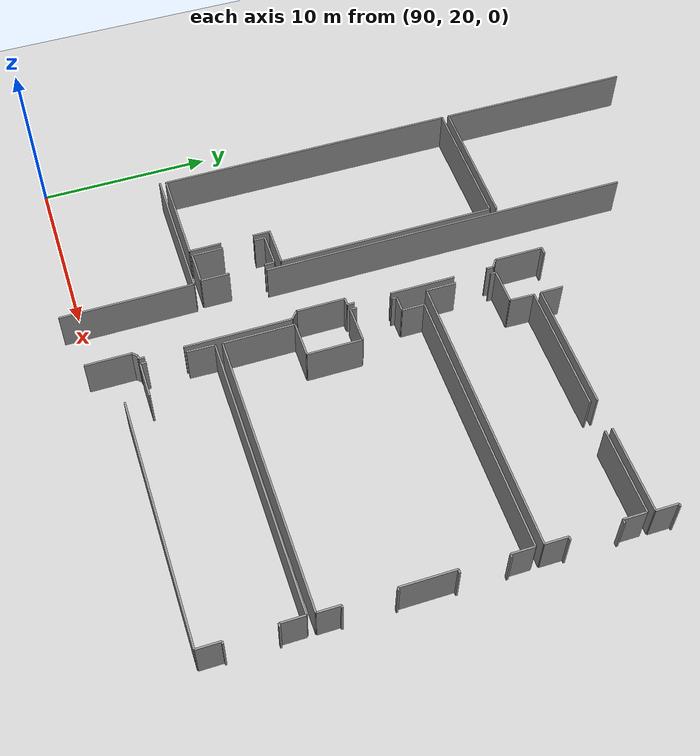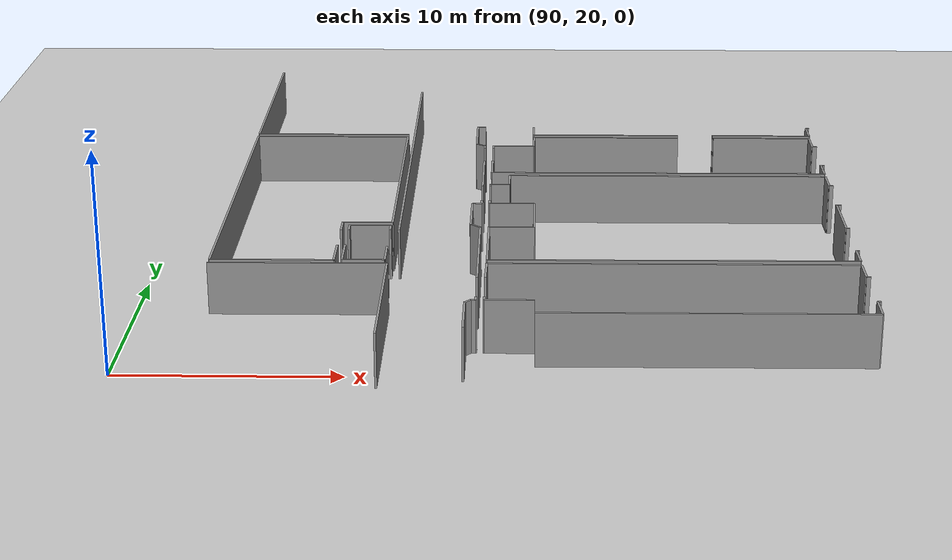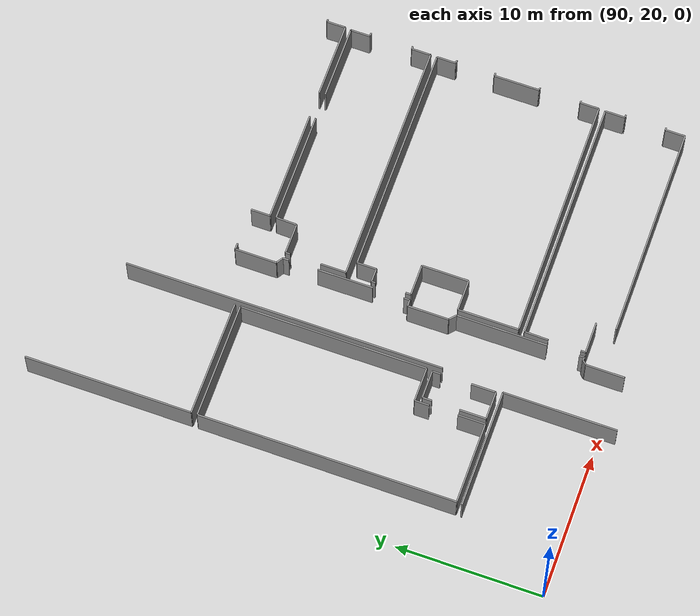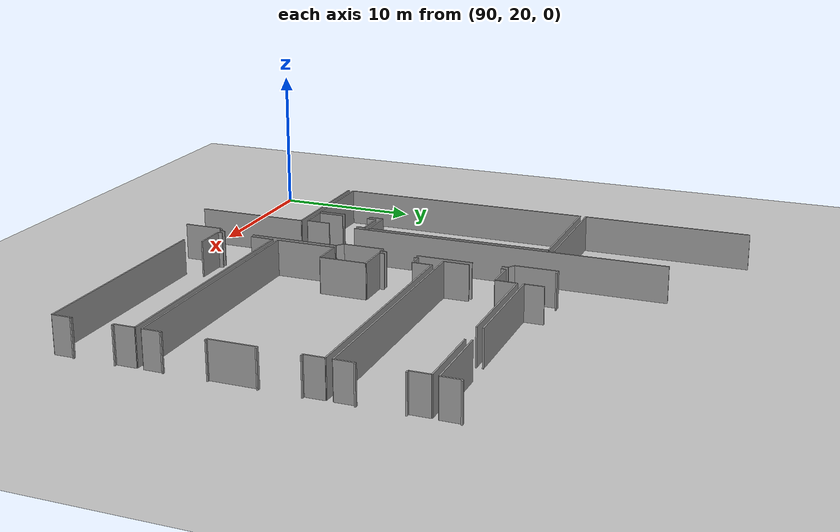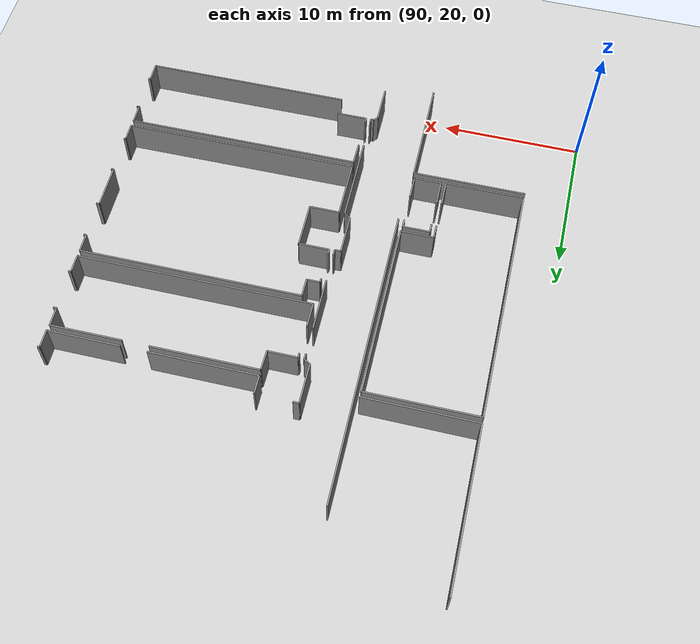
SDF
<sdf version="1.6">
 <world name="default">
  <model name="ground_plane">
   <static>1</static>
   <link name="link">
    <collision name="collision">
     <geometry><plane><normal>0 0 1</normal><size>100 100</size></plane></geometry>
     <surface><friction><ode><mu>100</mu><mu2>50</mu2></ode></friction></surface>
    </collision>
    <visual name="visual">
     <cast_shadows>0</cast_shadows>
     <geometry><plane><normal>0 0 1</normal><size>100 100</size></plane></geometry>
     <material>
      <script><uri>file://media/materials/scripts/gazebo.material</uri><name>Gazebo/Grey</name></script>
     </material>
    </visual>
   </link>
  </model>
  <model name="50036894">
   <static>1</static>
   <link name="Wall_642">
    <collision name="Wall_642_Collision">
     <geometry><box><size>21.8582505437 0.1 2.5</size></box></geometry>
     <pose>10.9291252718 0 1.25 0 0 0</pose>
    </collision>
    <visual name="Wall_642_Visual">
     <pose>10.9291252718 0 1.25 0 0 0</pose>
     <geometry><box><size>21.8582505437 0.1 2.5</size></box></geometry>
     <material>
      <script><uri>file://media/materials/scripts/gazebo.material</uri><name>Gazebo/Grey</name></script>
      <ambient>1 1 1 1</ambient>
     </material>
    </visual>
    <pose>224.466775292 -36.4658369735 0 0 0 1.57079632679</pose>
   </link>
   <link name="Wall_653">
    <collision name="Wall_653_Collision">
     <geometry><box><size>0.433655193401 0.1 2.5</size></box></geometry>
     <pose>0.216827596701 0 1.25 0 0 0</pose>
    </collision>
    <visual name="Wall_653_Visual">
     <pose>0.216827596701 0 1.25 0 0 0</pose>
     <geometry><box><size>0.433655193401 0.1 2.5</size></box></geometry>
     <material>
      <script><uri>file://media/materials/scripts/gazebo.material</uri><name>Gazebo/Grey</name></script>
      <ambient>1 1 1 1</ambient>
     </material>
    </visual>
    <pose>228.232728287 -20.9518858295 0 0 0 3.14159265359</pose>
   </link>
   <link name="Wall_654">
    <collision name="Wall_654_Collision">
     <geometry><box><size>2.87100025994 0.1 2.5</size></box></geometry>
     <pose>1.43550012997 0 1.25 0 0 0</pose>
    </collision>
    <visual name="Wall_654_Visual">
     <pose>1.43550012997 0 1.25 0 0 0</pose>
     <geometry><box><size>2.87100025994 0.1 2.5</size></box></geometry>
     <material>
      <script><uri>file://media/materials/scripts/gazebo.material</uri><name>Gazebo/Grey</name></script>
      <ambient>1 1 1 1</ambient>
     </material>
    </visual>
    <pose>227.799073094 -20.9518858295 0 0 0 -1.57079632679</pose>
   </link>
   <link name="Wall_655">
    <collision name="Wall_655_Collision">
     <geometry><box><size>0.534328188081 0.1 2.5</size></box></geometry>
     <pose>0.26716409404 0 1.25 0 0 0</pose>
    </collision>
    <visual name="Wall_655_Visual">
     <pose>0.26716409404 0 1.25 0 0 0</pose>
     <geometry><box><size>0.534328188081 0.1 2.5</size></box></geometry>
     <material>
      <script><uri>file://media/materials/scripts/gazebo.material</uri><name>Gazebo/Grey</name></script>
      <ambient>1 1 1 1</ambient>
     </material>
    </visual>
    <pose>227.799073094 -23.8228860894 0 0 0 -0.57339068937</pose>
   </link>
   <link name="Wall_656">
    <collision name="Wall_656_Collision">
     <geometry><box><size>0.420468017929 0.1 2.5</size></box></geometry>
     <pose>0.210234008965 0 1.25 0 0 0</pose>
    </collision>
    <visual name="Wall_656_Visual">
     <pose>0.210234008965 0 1.25 0 0 0</pose>
     <geometry><box><size>0.420468017929 0.1 2.5</size></box></geometry>
     <material>
      <script><uri>file://media/materials/scripts/gazebo.material</uri><name>Gazebo/Grey</name></script>
      <ambient>1 1 1 1</ambient>
     </material>
    </visual>
    <pose>228.247944259 -24.1127503503 0 0 0 -1.57079632679</pose>
   </link>
   <link name="Wall_657">
    <collision name="Wall_657_Collision">
     <geometry><box><size>3.82022329438 0.1 2.5</size></box></geometry>
     <pose>1.91011164719 0 1.25 0 0 0</pose>
    </collision>
    <visual name="Wall_657_Visual">
     <pose>1.91011164719 0 1.25 0 0 0</pose>
     <geometry><box><size>3.82022329438 0.1 2.5</size></box></geometry>
     <material>
      <script><uri>file://media/materials/scripts/gazebo.material</uri><name>Gazebo/Grey</name></script>
      <ambient>1 1 1 1</ambient>
     </material>
    </visual>
    <pose>228.247944259 -26.5196634734 0 0 0 -1.57079632679</pose>
   </link>
   <link name="Wall_658">
    <collision name="Wall_658_Collision">
     <geometry><box><size>0.419453619816 0.1 2.5</size></box></geometry>
     <pose>0.209726809908 0 1.25 0 0 0</pose>
    </collision>
    <visual name="Wall_658_Visual">
     <pose>0.209726809908 0 1.25 0 0 0</pose>
     <geometry><box><size>0.419453619816 0.1 2.5</size></box></geometry>
     <material>
      <script><uri>file://media/materials/scripts/gazebo.material</uri><name>Gazebo/Grey</name></script>
      <ambient>1 1 1 1</ambient>
     </material>
    </visual>
    <pose>228.247944259 -32.4754483957 0 0 0 -1.57079632679</pose>
   </link>
   <link name="Wall_659">
    <collision name="Wall_659_Collision">
     <geometry><box><size>0.446335169817 0.1 2.5</size></box></geometry>
     <pose>0.223167584908 0 1.25 0 0 0</pose>
    </collision>
    <visual name="Wall_659_Visual">
     <pose>0.223167584908 0 1.25 0 0 0</pose>
     <geometry><box><size>0.446335169817 0.1 2.5</size></box></geometry>
     <material>
      <script><uri>file://media/materials/scripts/gazebo.material</uri><name>Gazebo/Grey</name></script>
      <ambient>1 1 1 1</ambient>
     </material>
    </visual>
    <pose>228.247944259 -32.8949020155 0 0 0 3.14159265359</pose>
   </link>
   <link name="Wall_660">
    <collision name="Wall_660_Collision">
     <geometry><box><size>2.82205555098 0.1 2.5</size></box></geometry>
     <pose>1.41102777549 0 1.25 0 0 0</pose>
    </collision>
    <visual name="Wall_660_Visual">
     <pose>1.41102777549 0 1.25 0 0 0</pose>
     <geometry><box><size>2.82205555098 0.1 2.5</size></box></geometry>
     <material>
      <script><uri>file://media/materials/scripts/gazebo.material</uri><name>Gazebo/Grey</name></script>
      <ambient>1 1 1 1</ambient>
     </material>
    </visual>
    <pose>227.801609089 -32.8949020155 0 0 0 -1.57079632679</pose>
   </link>
   <link name="Wall_661">
    <collision name="Wall_661_Collision">
     <geometry><box><size>0.595153357461 0.1 2.5</size></box></geometry>
     <pose>0.29757667873 0 1.25 0 0 0</pose>
    </collision>
    <visual name="Wall_661_Visual">
     <pose>0.29757667873 0 1.25 0 0 0</pose>
     <geometry><box><size>0.595153357461 0.1 2.5</size></box></geometry>
     <material>
      <script><uri>file://media/materials/scripts/gazebo.material</uri><name>Gazebo/Grey</name></script>
      <ambient>1 1 1 1</ambient>
     </material>
    </visual>
    <pose>227.801609089 -35.7169575665 0 0 0 -0.716344735969</pose>
   </link>
   <link name="Wall_662">
    <collision name="Wall_662_Collision">
     <geometry><box><size>6.20405886045 0.1 2.5</size></box></geometry>
     <pose>3.10202943023 0 1.25 0 0 0</pose>
    </collision>
    <visual name="Wall_662_Visual">
     <pose>3.10202943023 0 1.25 0 0 0</pose>
     <geometry><box><size>6.20405886045 0.1 2.5</size></box></geometry>
     <material>
      <script><uri>file://media/materials/scripts/gazebo.material</uri><name>Gazebo/Grey</name></script>
      <ambient>1 1 1 1</ambient>
     </material>
    </visual>
    <pose>228.250480254 -36.1077544396 0 0 0 -1.57079632679</pose>
   </link>
   <link name="Wall_663">
    <collision name="Wall_663_Collision">
     <geometry><box><size>0.323339398589 0.1 2.5</size></box></geometry>
     <pose>0.161669699294 0 1.25 0 0 0</pose>
    </collision>
    <visual name="Wall_663_Visual">
     <pose>0.161669699294 0 1.25 0 0 0</pose>
     <geometry><box><size>0.323339398589 0.1 2.5</size></box></geometry>
     <material>
      <script><uri>file://media/materials/scripts/gazebo.material</uri><name>Gazebo/Grey</name></script>
      <ambient>1 1 1 1</ambient>
     </material>
    </visual>
    <pose>228.250480254 -44.4953052387 0 0 0 -1.57079632679</pose>
   </link>
   <link name="Wall_664">
    <collision name="Wall_664_Collision">
     <geometry><box><size>0.20795161321 0.1 2.5</size></box></geometry>
     <pose>0.103975806605 0 1.25 0 0 0</pose>
    </collision>
    <visual name="Wall_664_Visual">
     <pose>0.103975806605 0 1.25 0 0 0</pose>
     <geometry><box><size>0.20795161321 0.1 2.5</size></box></geometry>
     <material>
      <script><uri>file://media/materials/scripts/gazebo.material</uri><name>Gazebo/Grey</name></script>
      <ambient>1 1 1 1</ambient>
     </material>
    </visual>
    <pose>228.250480254 -44.8186446373 0 0 0 3.14159265359</pose>
   </link>
   <link name="Wall_665">
    <collision name="Wall_665_Collision">
     <geometry><box><size>0.374807834456 0.1 2.5</size></box></geometry>
     <pose>0.187403917228 0 1.25 0 0 0</pose>
    </collision>
    <visual name="Wall_665_Visual">
     <pose>0.187403917228 0 1.25 0 0 0</pose>
     <geometry><box><size>0.374807834456 0.1 2.5</size></box></geometry>
     <material>
      <script><uri>file://media/materials/scripts/gazebo.material</uri><name>Gazebo/Grey</name></script>
      <ambient>1 1 1 1</ambient>
     </material>
    </visual>
    <pose>228.042528641 -44.8186446373 0 0 0 -2.32317633624</pose>
   </link>
   <link name="Wall_666">
    <collision name="Wall_666_Collision">
     <geometry><box><size>2.65011507079 0.1 2.5</size></box></geometry>
     <pose>1.32505753539 0 1.25 0 0 0</pose>
    </collision>
    <visual name="Wall_666_Visual">
     <pose>1.32505753539 0 1.25 0 0 0</pose>
     <geometry><box><size>2.65011507079 0.1 2.5</size></box></geometry>
     <material>
      <script><uri>file://media/materials/scripts/gazebo.material</uri><name>Gazebo/Grey</name></script>
      <ambient>1 1 1 1</ambient>
     </material>
    </visual>
    <pose>227.786393117 -45.0922785284 0 0 0 -1.57079632679</pose>
   </link>
   <link name="Wall_819">
    <collision name="Wall_819_Collision">
     <geometry><box><size>8.08982495293 0.1 2.5</size></box></geometry>
     <pose>4.04491247646 0 1.25 0 0 0</pose>
    </collision>
    <visual name="Wall_819_Visual">
     <pose>4.04491247646 0 1.25 0 0 0</pose>
     <geometry><box><size>8.08982495293 0.1 2.5</size></box></geometry>
     <material>
      <script><uri>file://media/materials/scripts/gazebo.material</uri><name>Gazebo/Grey</name></script>
      <ambient>1 1 1 1</ambient>
     </material>
    </visual>
    <pose>216.090382872 -40.671531551 0 0 0 0.0</pose>
   </link>
   <link name="Wall_820">
    <collision name="Wall_820_Collision">
     <geometry><box><size>7.74721199019 0.1 2.5</size></box></geometry>
     <pose>3.87360599509 0 1.25 0 0 0</pose>
    </collision>
    <visual name="Wall_820_Visual">
     <pose>3.87360599509 0 1.25 0 0 0</pose>
     <geometry><box><size>7.74721199019 0.1 2.5</size></box></geometry>
     <material>
      <script><uri>file://media/materials/scripts/gazebo.material</uri><name>Gazebo/Grey</name></script>
      <ambient>1 1 1 1</ambient>
     </material>
    </visual>
    <pose>224.180207825 -40.671531551 0 0 0 -1.57079632679</pose>
   </link>
   <link name="Wall_833">
    <collision name="Wall_833_Collision">
     <geometry><box><size>16.7426408587 0.1 2.5</size></box></geometry>
     <pose>8.37132042934 0 1.25 0 0 0</pose>
    </collision>
    <visual name="Wall_833_Visual">
     <pose>8.37132042934 0 1.25 0 0 0</pose>
     <geometry><box><size>16.7426408587 0.1 2.5</size></box></geometry>
     <material>
      <script><uri>file://media/materials/scripts/gazebo.material</uri><name>Gazebo/Grey</name></script>
      <ambient>1 1 1 1</ambient>
     </material>
    </visual>
    <pose>228.648631514 -40.6266444344 0 0 0 0.0</pose>
   </link>
   <link name="Wall_834">
    <collision name="Wall_834_Collision">
     <geometry><box><size>1.38237102879 0.1 2.5</size></box></geometry>
     <pose>0.691185514395 0 1.25 0 0 0</pose>
    </collision>
    <visual name="Wall_834_Visual">
     <pose>0.691185514395 0 1.25 0 0 0</pose>
     <geometry><box><size>1.38237102879 0.1 2.5</size></box></geometry>
     <material>
      <script><uri>file://media/materials/scripts/gazebo.material</uri><name>Gazebo/Grey</name></script>
      <ambient>1 1 1 1</ambient>
     </material>
    </visual>
    <pose>245.391272372 -40.6266444344 0 0 0 -1.57079632679</pose>
   </link>
   <link name="Wall_835">
    <collision name="Wall_835_Collision">
     <geometry><box><size>0.190199646229 0.1 2.5</size></box></geometry>
     <pose>0.0950998231143 0 1.25 0 0 0</pose>
    </collision>
    <visual name="Wall_835_Visual">
     <pose>0.0950998231143 0 1.25 0 0 0</pose>
     <geometry><box><size>0.190199646229 0.1 2.5</size></box></geometry>
     <material>
      <script><uri>file://media/materials/scripts/gazebo.material</uri><name>Gazebo/Grey</name></script>
      <ambient>1 1 1 1</ambient>
     </material>
    </visual>
    <pose>245.391272372 -42.0090154632 0 0 0 0.0</pose>
   </link>
   <link name="Wall_836">
    <collision name="Wall_836_Collision">
     <geometry><box><size>0.154695712266 0.1 2.5</size></box></geometry>
     <pose>0.077347856133 0 1.25 0 0 0</pose>
    </collision>
    <visual name="Wall_836_Visual">
     <pose>0.077347856133 0 1.25 0 0 0</pose>
     <geometry><box><size>0.154695712266 0.1 2.5</size></box></geometry>
     <material>
      <script><uri>file://media/materials/scripts/gazebo.material</uri><name>Gazebo/Grey</name></script>
      <ambient>1 1 1 1</ambient>
     </material>
    </visual>
    <pose>245.581472018 -44.8102758529 0 0 0 3.14159265359</pose>
   </link>
   <link name="Wall_837">
    <collision name="Wall_837_Collision">
     <geometry><box><size>1.35980067077 0.1 2.5</size></box></geometry>
     <pose>0.679900335385 0 1.25 0 0 0</pose>
    </collision>
    <visual name="Wall_837_Visual">
     <pose>0.679900335385 0 1.25 0 0 0</pose>
     <geometry><box><size>1.35980067077 0.1 2.5</size></box></geometry>
     <material>
      <script><uri>file://media/materials/scripts/gazebo.material</uri><name>Gazebo/Grey</name></script>
      <ambient>1 1 1 1</ambient>
     </material>
    </visual>
    <pose>245.426776306 -44.8102758529 0 0 0 -1.57079632679</pose>
   </link>
   <link name="Wall_838">
    <collision name="Wall_838_Collision">
     <geometry><box><size>14.6453727596 0.1 2.5</size></box></geometry>
     <pose>7.3226863798 0 1.25 0 0 0</pose>
    </collision>
    <visual name="Wall_838_Visual">
     <pose>7.3226863798 0 1.25 0 0 0</pose>
     <geometry><box><size>14.6453727596 0.1 2.5</size></box></geometry>
     <material>
      <script><uri>file://media/materials/scripts/gazebo.material</uri><name>Gazebo/Grey</name></script>
      <ambient>1 1 1 1</ambient>
     </material>
    </visual>
    <pose>245.426776306 -46.1700765237 0 0 0 3.14159265359</pose>
   </link>
   <link name="Wall_840">
    <collision name="Wall_840_Collision">
     <geometry><box><size>2.17081196229 0.1 2.5</size></box></geometry>
     <pose>1.08540598114 0 1.25 0 0 0</pose>
    </collision>
    <visual name="Wall_840_Visual">
     <pose>1.08540598114 0 1.25 0 0 0</pose>
     <geometry><box><size>2.17081196229 0.1 2.5</size></box></geometry>
     <material>
      <script><uri>file://media/materials/scripts/gazebo.material</uri><name>Gazebo/Grey</name></script>
      <ambient>1 1 1 1</ambient>
     </material>
    </visual>
    <pose>230.781403547 -44.8125582486 0 0 0 3.14159265359</pose>
   </link>
   <link name="Wall_841">
    <collision name="Wall_841_Collision">
     <geometry><box><size>0.334244178306 0.1 2.5</size></box></geometry>
     <pose>0.167122089153 0 1.25 0 0 0</pose>
    </collision>
    <visual name="Wall_841_Visual">
     <pose>0.167122089153 0 1.25 0 0 0</pose>
     <geometry><box><size>0.334244178306 0.1 2.5</size></box></geometry>
     <material>
      <script><uri>file://media/materials/scripts/gazebo.material</uri><name>Gazebo/Grey</name></script>
      <ambient>1 1 1 1</ambient>
     </material>
    </visual>
    <pose>228.610591584 -44.8125582486 0 0 0 1.57079632679</pose>
   </link>
   <link name="Wall_842">
    <collision name="Wall_842_Collision">
     <geometry><box><size>1.62779271187 0.1 2.5</size></box></geometry>
     <pose>0.813896355935 0 1.25 0 0 0</pose>
    </collision>
    <visual name="Wall_842_Visual">
     <pose>0.813896355935 0 1.25 0 0 0</pose>
     <geometry><box><size>1.62779271187 0.1 2.5</size></box></geometry>
     <material>
      <script><uri>file://media/materials/scripts/gazebo.material</uri><name>Gazebo/Grey</name></script>
      <ambient>1 1 1 1</ambient>
     </material>
    </visual>
    <pose>228.610591584 -42.2539926076 0 0 0 1.54742517385</pose>
   </link>
   <link name="Wall_843">
    <collision name="Wall_843_Collision">
     <geometry><box><size>4.15700346797 0.1 2.5</size></box></geometry>
     <pose>2.07850173399 0 1.25 0 0 0</pose>
    </collision>
    <visual name="Wall_843_Visual">
     <pose>2.07850173399 0 1.25 0 0 0</pose>
     <geometry><box><size>4.15700346797 0.1 2.5</size></box></geometry>
     <material>
      <script><uri>file://media/materials/scripts/gazebo.material</uri><name>Gazebo/Grey</name></script>
      <ambient>1 1 1 1</ambient>
     </material>
    </visual>
    <pose>228.656239499 -40.2170811962 0 0 0 1.57079632679</pose>
   </link>
   <link name="Wall_844">
    <collision name="Wall_844_Collision">
     <geometry><box><size>2.13784402361 0.1 2.5</size></box></geometry>
     <pose>1.06892201181 0 1.25 0 0 0</pose>
    </collision>
    <visual name="Wall_844_Visual">
     <pose>1.06892201181 0 1.25 0 0 0</pose>
     <geometry><box><size>2.13784402361 0.1 2.5</size></box></geometry>
     <material>
      <script><uri>file://media/materials/scripts/gazebo.material</uri><name>Gazebo/Grey</name></script>
      <ambient>1 1 1 1</ambient>
     </material>
    </visual>
    <pose>228.656239499 -36.0600777283 0 0 0 0.0</pose>
   </link>
   <link name="Wall_845">
    <collision name="Wall_845_Collision">
     <geometry><box><size>3.22527880098 0.1 2.5</size></box></geometry>
     <pose>1.61263940049 0 1.25 0 0 0</pose>
    </collision>
    <visual name="Wall_845_Visual">
     <pose>1.61263940049 0 1.25 0 0 0</pose>
     <geometry><box><size>3.22527880098 0.1 2.5</size></box></geometry>
     <material>
      <script><uri>file://media/materials/scripts/gazebo.material</uri><name>Gazebo/Grey</name></script>
      <ambient>1 1 1 1</ambient>
     </material>
    </visual>
    <pose>230.794083523 -36.0600777283 0 0 0 1.57079632679</pose>
   </link>
   <link name="Wall_846">
    <collision name="Wall_846_Collision">
     <geometry><box><size>2.16827596701 0.1 2.5</size></box></geometry>
     <pose>1.0841379835 0 1.25 0 0 0</pose>
    </collision>
    <visual name="Wall_846_Visual">
     <pose>1.0841379835 0 1.25 0 0 0</pose>
     <geometry><box><size>2.16827596701 0.1 2.5</size></box></geometry>
     <material>
      <script><uri>file://media/materials/scripts/gazebo.material</uri><name>Gazebo/Grey</name></script>
      <ambient>1 1 1 1</ambient>
     </material>
    </visual>
    <pose>230.794083523 -32.8347989273 0 0 0 3.14159265359</pose>
   </link>
   <link name="Wall_847">
    <collision name="Wall_847_Collision">
     <geometry><box><size>0.365690519816 0.1 2.5</size></box></geometry>
     <pose>0.182845259908 0 1.25 0 0 0</pose>
    </collision>
    <visual name="Wall_847_Visual">
     <pose>0.182845259908 0 1.25 0 0 0</pose>
     <geometry><box><size>0.365690519816 0.1 2.5</size></box></geometry>
     <material>
      <script><uri>file://media/materials/scripts/gazebo.material</uri><name>Gazebo/Grey</name></script>
      <ambient>1 1 1 1</ambient>
     </material>
    </visual>
    <pose>228.625807556 -32.8347989273 0 0 0 1.57079632679</pose>
   </link>
   <link name="Wall_848">
    <collision name="Wall_848_Collision">
     <geometry><box><size>0.277184284437 0.1 2.5</size></box></geometry>
     <pose>0.138592142219 0 1.25 0 0 0</pose>
    </collision>
    <visual name="Wall_848_Visual">
     <pose>0.138592142219 0 1.25 0 0 0</pose>
     <geometry><box><size>0.277184284437 0.1 2.5</size></box></geometry>
     <material>
      <script><uri>file://media/materials/scripts/gazebo.material</uri><name>Gazebo/Grey</name></script>
      <ambient>1 1 1 1</ambient>
     </material>
    </visual>
    <pose>228.625807556 -30.3885778772 0 0 0 1.57079632679</pose>
   </link>
   <link name="Wall_849">
    <collision name="Wall_849_Collision">
     <geometry><box><size>0.943390245294 0.1 2.5</size></box></geometry>
     <pose>0.471695122647 0 1.25 0 0 0</pose>
    </collision>
    <visual name="Wall_849_Visual">
     <pose>0.471695122647 0 1.25 0 0 0</pose>
     <geometry><box><size>0.943390245294 0.1 2.5</size></box></geometry>
     <material>
      <script><uri>file://media/materials/scripts/gazebo.material</uri><name>Gazebo/Grey</name></script>
      <ambient>1 1 1 1</ambient>
     </material>
    </visual>
    <pose>228.625807556 -30.1113935928 0 0 0 0.0</pose>
   </link>
   <link name="Wall_850">
    <collision name="Wall_850_Collision">
     <geometry><box><size>1.32404313728 0.1 2.5</size></box></geometry>
     <pose>0.66202156864 0 1.25 0 0 0</pose>
    </collision>
    <visual name="Wall_850_Visual">
     <pose>0.66202156864 0 1.25 0 0 0</pose>
     <geometry><box><size>1.32404313728 0.1 2.5</size></box></geometry>
     <material>
      <script><uri>file://media/materials/scripts/gazebo.material</uri><name>Gazebo/Grey</name></script>
      <ambient>1 1 1 1</ambient>
     </material>
    </visual>
    <pose>229.569197801 -30.1113935928 0 0 0 1.57079632679</pose>
   </link>
   <link name="Wall_851">
    <collision name="Wall_851_Collision">
     <geometry><box><size>15.8398265379 0.1 2.5</size></box></geometry>
     <pose>7.91991326896 0 1.25 0 0 0</pose>
    </collision>
    <visual name="Wall_851_Visual">
     <pose>7.91991326896 0 1.25 0 0 0</pose>
     <geometry><box><size>15.8398265379 0.1 2.5</size></box></geometry>
     <material>
      <script><uri>file://media/materials/scripts/gazebo.material</uri><name>Gazebo/Grey</name></script>
      <ambient>1 1 1 1</ambient>
     </material>
    </visual>
    <pose>229.569197801 -28.7873504555 0 0 0 0.0</pose>
   </link>
   <link name="Wall_852">
    <collision name="Wall_852_Collision">
     <geometry><box><size>1.33393351888 0.1 2.5</size></box></geometry>
     <pose>0.666966759442 0 1.25 0 0 0</pose>
    </collision>
    <visual name="Wall_852_Visual">
     <pose>0.666966759442 0 1.25 0 0 0</pose>
     <geometry><box><size>1.33393351888 0.1 2.5</size></box></geometry>
     <material>
      <script><uri>file://media/materials/scripts/gazebo.material</uri><name>Gazebo/Grey</name></script>
      <ambient>1 1 1 1</ambient>
     </material>
    </visual>
    <pose>245.409024339 -28.7873504555 0 0 0 -1.57079632679</pose>
   </link>
   <link name="Wall_853">
    <collision name="Wall_853_Collision">
     <geometry><box><size>0.202879622644 0.1 2.5</size></box></geometry>
     <pose>0.101439811322 0 1.25 0 0 0</pose>
    </collision>
    <visual name="Wall_853_Visual">
     <pose>0.101439811322 0 1.25 0 0 0</pose>
     <geometry><box><size>0.202879622644 0.1 2.5</size></box></geometry>
     <material>
      <script><uri>file://media/materials/scripts/gazebo.material</uri><name>Gazebo/Grey</name></script>
      <ambient>1 1 1 1</ambient>
     </material>
    </visual>
    <pose>245.409024339 -30.1212839744 0 0 0 0.0</pose>
   </link>
   <link name="Wall_854">
    <collision name="Wall_854_Collision">
     <geometry><box><size>0.225703580191 0.1 2.5</size></box></geometry>
     <pose>0.112851790096 0 1.25 0 0 0</pose>
    </collision>
    <visual name="Wall_854_Visual">
     <pose>0.112851790096 0 1.25 0 0 0</pose>
     <geometry><box><size>0.225703580191 0.1 2.5</size></box></geometry>
     <material>
      <script><uri>file://media/materials/scripts/gazebo.material</uri><name>Gazebo/Grey</name></script>
      <ambient>1 1 1 1</ambient>
     </material>
    </visual>
    <pose>245.611903962 -32.8561012877 0 0 0 3.14159265359</pose>
   </link>
   <link name="Wall_855">
    <collision name="Wall_855_Collision">
     <geometry><box><size>3.14057655853 0.1 2.5</size></box></geometry>
     <pose>1.57028827926 0 1.25 0 0 0</pose>
    </collision>
    <visual name="Wall_855_Visual">
     <pose>1.57028827926 0 1.25 0 0 0</pose>
     <geometry><box><size>3.14057655853 0.1 2.5</size></box></geometry>
     <material>
      <script><uri>file://media/materials/scripts/gazebo.material</uri><name>Gazebo/Grey</name></script>
      <ambient>1 1 1 1</ambient>
     </material>
    </visual>
    <pose>245.386200382 -32.8561012877 0 0 0 -1.57079632679</pose>
   </link>
   <link name="Wall_856">
    <collision name="Wall_856_Collision">
     <geometry><box><size>0.180055665096 0.1 2.5</size></box></geometry>
     <pose>0.0900278325482 0 1.25 0 0 0</pose>
    </collision>
    <visual name="Wall_856_Visual">
     <pose>0.0900278325482 0 1.25 0 0 0</pose>
     <geometry><box><size>0.180055665096 0.1 2.5</size></box></geometry>
     <material>
      <script><uri>file://media/materials/scripts/gazebo.material</uri><name>Gazebo/Grey</name></script>
      <ambient>1 1 1 1</ambient>
     </material>
    </visual>
    <pose>245.386200382 -35.9966778462 0 0 0 0.0</pose>
   </link>
   <link name="Wall_857">
    <collision name="Wall_857_Collision">
     <geometry><box><size>0.147087726417 0.1 2.5</size></box></geometry>
     <pose>0.0735438632084 0 1.25 0 0 0</pose>
    </collision>
    <visual name="Wall_857_Visual">
     <pose>0.0735438632084 0 1.25 0 0 0</pose>
     <geometry><box><size>0.147087726417 0.1 2.5</size></box></geometry>
     <material>
      <script><uri>file://media/materials/scripts/gazebo.material</uri><name>Gazebo/Grey</name></script>
      <ambient>1 1 1 1</ambient>
     </material>
    </visual>
    <pose>245.566256047 -38.8745252934 0 0 0 3.14159265359</pose>
   </link>
   <link name="Wall_858">
    <collision name="Wall_858_Collision">
     <geometry><box><size>1.29335759435 0.1 2.5</size></box></geometry>
     <pose>0.646678797177 0 1.25 0 0 0</pose>
    </collision>
    <visual name="Wall_858_Visual">
     <pose>0.646678797177 0 1.25 0 0 0</pose>
     <geometry><box><size>1.29335759435 0.1 2.5</size></box></geometry>
     <material>
      <script><uri>file://media/materials/scripts/gazebo.material</uri><name>Gazebo/Grey</name></script>
      <ambient>1 1 1 1</ambient>
     </material>
    </visual>
    <pose>245.41916832 -38.8745252934 0 0 0 -1.57079632679</pose>
   </link>
   <link name="Wall_859">
    <collision name="Wall_859_Collision">
     <geometry><box><size>16.763001018 0.1 2.5</size></box></geometry>
     <pose>8.38150050901 0 1.25 0 0 0</pose>
    </collision>
    <visual name="Wall_859_Visual">
     <pose>8.38150050901 0 1.25 0 0 0</pose>
     <geometry><box><size>16.763001018 0.1 2.5</size></box></geometry>
     <material>
      <script><uri>file://media/materials/scripts/gazebo.material</uri><name>Gazebo/Grey</name></script>
      <ambient>1 1 1 1</ambient>
     </material>
    </visual>
    <pose>245.41916832 -40.1678828877 0 0 0 -3.13865771497</pose>
   </link>
   <link name="Wall_860">
    <collision name="Wall_860_Collision">
     <geometry><box><size>17.6213632243 0.1 2.5</size></box></geometry>
     <pose>8.81068161213 0 1.25 0 0 0</pose>
    </collision>
    <visual name="Wall_860_Visual">
     <pose>8.81068161213 0 1.25 0 0 0</pose>
     <geometry><box><size>17.6213632243 0.1 2.5</size></box></geometry>
     <material>
      <script><uri>file://media/materials/scripts/gazebo.material</uri><name>Gazebo/Grey</name></script>
      <ambient>1 1 1 1</ambient>
     </material>
    </visual>
    <pose>216.156318749 -40.2995010429 0 0 0 1.57079632679</pose>
   </link>
   <link name="Wall_861">
    <collision name="Wall_861_Collision">
     <geometry><box><size>7.95034521236 0.1 2.5</size></box></geometry>
     <pose>3.97517260618 0 1.25 0 0 0</pose>
    </collision>
    <visual name="Wall_861_Visual">
     <pose>3.97517260618 0 1.25 0 0 0</pose>
     <geometry><box><size>7.95034521236 0.1 2.5</size></box></geometry>
     <material>
      <script><uri>file://media/materials/scripts/gazebo.material</uri><name>Gazebo/Grey</name></script>
      <ambient>1 1 1 1</ambient>
     </material>
    </visual>
    <pose>216.156318749 -22.6781378187 0 0 0 0.0</pose>
   </link>
   <link name="Wall_862">
    <collision name="Wall_862_Collision">
     <geometry><box><size>12.8227529497 0.1 2.5</size></box></geometry>
     <pose>6.41137647484 0 1.25 0 0 0</pose>
    </collision>
    <visual name="Wall_862_Visual">
     <pose>6.41137647484 0 1.25 0 0 0</pose>
     <geometry><box><size>12.8227529497 0.1 2.5</size></box></geometry>
     <material>
      <script><uri>file://media/materials/scripts/gazebo.material</uri><name>Gazebo/Grey</name></script>
      <ambient>1 1 1 1</ambient>
     </material>
    </visual>
    <pose>224.106663962 -22.6781378187 0 0 0 -1.57079632679</pose>
   </link>
   <link name="Wall_863">
    <collision name="Wall_863_Collision">
     <geometry><box><size>2.35086762739 0.1 2.5</size></box></geometry>
     <pose>1.17543381369 0 1.25 0 0 0</pose>
    </collision>
    <visual name="Wall_863_Visual">
     <pose>1.17543381369 0 1.25 0 0 0</pose>
     <geometry><box><size>2.35086762739 0.1 2.5</size></box></geometry>
     <material>
      <script><uri>file://media/materials/scripts/gazebo.material</uri><name>Gazebo/Grey</name></script>
      <ambient>1 1 1 1</ambient>
     </material>
    </visual>
    <pose>224.106663962 -35.5008907683 0 0 0 3.14159265359</pose>
   </link>
   <link name="Wall_864">
    <collision name="Wall_864_Collision">
     <geometry><box><size>1.00045013916 0.1 2.5</size></box></geometry>
     <pose>0.500225069581 0 1.25 0 0 0</pose>
    </collision>
    <visual name="Wall_864_Visual">
     <pose>0.500225069581 0 1.25 0 0 0</pose>
     <geometry><box><size>1.00045013916 0.1 2.5</size></box></geometry>
     <material>
      <script><uri>file://media/materials/scripts/gazebo.material</uri><name>Gazebo/Grey</name></script>
      <ambient>1 1 1 1</ambient>
     </material>
    </visual>
    <pose>221.755796334 -35.5008907683 0 0 0 -1.57079632679</pose>
   </link>
   <link name="Wall_865">
    <collision name="Wall_865_Collision">
     <geometry><box><size>1.8644637321 0.1 2.5</size></box></geometry>
     <pose>0.932231866049 0 1.25 0 0 0</pose>
    </collision>
    <visual name="Wall_865_Visual">
     <pose>0.932231866049 0 1.25 0 0 0</pose>
     <geometry><box><size>1.8644637321 0.1 2.5</size></box></geometry>
     <material>
      <script><uri>file://media/materials/scripts/gazebo.material</uri><name>Gazebo/Grey</name></script>
      <ambient>1 1 1 1</ambient>
     </material>
    </visual>
    <pose>221.755796334 -38.4385877042 0 0 0 -1.57079632679</pose>
   </link>
   <link name="Wall_866">
    <collision name="Wall_866_Collision">
     <geometry><box><size>5.59947871055 0.1 2.5</size></box></geometry>
     <pose>2.79973935527 0 1.25 0 0 0</pose>
    </collision>
    <visual name="Wall_866_Visual">
     <pose>2.79973935527 0 1.25 0 0 0</pose>
     <geometry><box><size>5.59947871055 0.1 2.5</size></box></geometry>
     <material>
      <script><uri>file://media/materials/scripts/gazebo.material</uri><name>Gazebo/Grey</name></script>
      <ambient>1 1 1 1</ambient>
     </material>
    </visual>
    <pose>221.755796334 -40.3030514363 0 0 0 3.1409585957</pose>
   </link>
   <link name="Wall_867">
    <collision name="Wall_867_Collision">
     <geometry><box><size>1.81247582879 0.1 2.5</size></box></geometry>
     <pose>0.906237914397 0 1.25 0 0 0</pose>
    </collision>
    <visual name="Wall_867_Visual">
     <pose>0.906237914397 0 1.25 0 0 0</pose>
     <geometry><box><size>1.81247582879 0.1 2.5</size></box></geometry>
     <material>
      <script><uri>file://media/materials/scripts/gazebo.material</uri><name>Gazebo/Grey</name></script>
      <ambient>1 1 1 1</ambient>
     </material>
    </visual>
    <pose>222.115907664 -40.2363547604 0 0 0 1.57079632679</pose>
   </link>
   <link name="Wall_868">
    <collision name="Wall_868_Collision">
     <geometry><box><size>0.643128403781 0.1 2.5</size></box></geometry>
     <pose>0.321564201891 0 1.25 0 0 0</pose>
    </collision>
    <visual name="Wall_868_Visual">
     <pose>0.321564201891 0 1.25 0 0 0</pose>
     <geometry><box><size>0.643128403781 0.1 2.5</size></box></geometry>
     <material>
      <script><uri>file://media/materials/scripts/gazebo.material</uri><name>Gazebo/Grey</name></script>
      <ambient>1 1 1 1</ambient>
     </material>
    </visual>
    <pose>222.115907664 -36.5416632325 0 0 0 1.57079632679</pose>
   </link>
   <link name="Wall_869">
    <collision name="Wall_869_Collision">
     <geometry><box><size>1.93242840568 0.1 2.5</size></box></geometry>
     <pose>0.966214202842 0 1.25 0 0 0</pose>
    </collision>
    <visual name="Wall_869_Visual">
     <pose>0.966214202842 0 1.25 0 0 0</pose>
     <geometry><box><size>1.93242840568 0.1 2.5</size></box></geometry>
     <material>
      <script><uri>file://media/materials/scripts/gazebo.material</uri><name>Gazebo/Grey</name></script>
      <ambient>1 1 1 1</ambient>
     </material>
    </visual>
    <pose>222.115907664 -35.8985348287 0 0 0 0.0</pose>
   </link>
   <link name="Wall_870">
    <collision name="Wall_870_Collision">
     <geometry><box><size>0.579982121233 0.1 2.5</size></box></geometry>
     <pose>0.289991060617 0 1.25 0 0 0</pose>
    </collision>
    <visual name="Wall_870_Visual">
     <pose>0.289991060617 0 1.25 0 0 0</pose>
     <geometry><box><size>0.579982121233 0.1 2.5</size></box></geometry>
     <material>
      <script><uri>file://media/materials/scripts/gazebo.material</uri><name>Gazebo/Grey</name></script>
      <ambient>1 1 1 1</ambient>
     </material>
    </visual>
    <pose>224.04833607 -35.8985348287 0 0 0 -1.57079632679</pose>
   </link>
   <link name="Wall_871">
    <collision name="Wall_871_Collision">
     <geometry><box><size>1.6674168986 0.1 2.5</size></box></geometry>
     <pose>0.833708449302 0 1.25 0 0 0</pose>
    </collision>
    <visual name="Wall_871_Visual">
     <pose>0.833708449302 0 1.25 0 0 0</pose>
     <geometry><box><size>1.6674168986 0.1 2.5</size></box></geometry>
     <material>
      <script><uri>file://media/materials/scripts/gazebo.material</uri><name>Gazebo/Grey</name></script>
      <ambient>1 1 1 1</ambient>
     </material>
    </visual>
    <pose>224.04833607 -38.5689378618 0 0 0 -1.57079632679</pose>
   </link>
   <link name="Wall_872">
    <collision name="Wall_872_Collision">
     <geometry><box><size>1.93242840568 0.1 2.5</size></box></geometry>
     <pose>0.966214202842 0 1.25 0 0 0</pose>
    </collision>
    <visual name="Wall_872_Visual">
     <pose>0.966214202842 0 1.25 0 0 0</pose>
     <geometry><box><size>1.93242840568 0.1 2.5</size></box></geometry>
     <material>
      <script><uri>file://media/materials/scripts/gazebo.material</uri><name>Gazebo/Grey</name></script>
      <ambient>1 1 1 1</ambient>
     </material>
    </visual>
    <pose>224.04833607 -40.2363547604 0 0 0 3.14159265359</pose>
   </link>
   <link name="Wall_873">
    <collision name="Wall_873_Collision">
     <geometry><box><size>7.62066582556 0.1 2.5</size></box></geometry>
     <pose>3.81033291278 0 1.25 0 0 0</pose>
    </collision>
    <visual name="Wall_873_Visual">
     <pose>3.81033291278 0 1.25 0 0 0</pose>
     <geometry><box><size>7.62066582556 0.1 2.5</size></box></geometry>
     <material>
      <script><uri>file://media/materials/scripts/gazebo.material</uri><name>Gazebo/Grey</name></script>
      <ambient>1 1 1 1</ambient>
     </material>
    </visual>
    <pose>230.819443476 -22.6976649823 0 0 0 0.0</pose>
   </link>
   <link name="Wall_874">
    <collision name="Wall_874_Collision">
     <geometry><box><size>5.05423859912 0.1 2.5</size></box></geometry>
     <pose>2.52711929956 0 1.25 0 0 0</pose>
    </collision>
    <visual name="Wall_874_Visual">
     <pose>2.52711929956 0 1.25 0 0 0</pose>
     <geometry><box><size>5.05423859912 0.1 2.5</size></box></geometry>
     <material>
      <script><uri>file://media/materials/scripts/gazebo.material</uri><name>Gazebo/Grey</name></script>
      <ambient>1 1 1 1</ambient>
     </material>
    </visual>
    <pose>240.314209816 -22.6976649823 0 0 0 0.0</pose>
   </link>
   <link name="Wall_875">
    <collision name="Wall_875_Collision">
     <geometry><box><size>1.34889589105 0.1 2.5</size></box></geometry>
     <pose>0.674447945527 0 1.25 0 0 0</pose>
    </collision>
    <visual name="Wall_875_Visual">
     <pose>0.674447945527 0 1.25 0 0 0</pose>
     <geometry><box><size>1.34889589105 0.1 2.5</size></box></geometry>
     <material>
      <script><uri>file://media/materials/scripts/gazebo.material</uri><name>Gazebo/Grey</name></script>
      <ambient>1 1 1 1</ambient>
     </material>
    </visual>
    <pose>245.368448415 -22.6976649823 0 0 0 -1.57079632679</pose>
   </link>
   <link name="Wall_876">
    <collision name="Wall_876_Collision">
     <geometry><box><size>0.24091955189 0.1 2.5</size></box></geometry>
     <pose>0.120459775945 0 1.25 0 0 0</pose>
    </collision>
    <visual name="Wall_876_Visual">
     <pose>0.120459775945 0 1.25 0 0 0</pose>
     <geometry><box><size>0.24091955189 0.1 2.5</size></box></geometry>
     <material>
      <script><uri>file://media/materials/scripts/gazebo.material</uri><name>Gazebo/Grey</name></script>
      <ambient>1 1 1 1</ambient>
     </material>
    </visual>
    <pose>245.368448415 -24.0465608734 0 0 0 0.0</pose>
   </link>
   <link name="Wall_877">
    <collision name="Wall_877_Collision">
     <geometry><box><size>0.190199646229 0.1 2.5</size></box></geometry>
     <pose>0.0950998231143 0 1.25 0 0 0</pose>
    </collision>
    <visual name="Wall_877_Visual">
     <pose>0.0950998231143 0 1.25 0 0 0</pose>
     <geometry><box><size>0.190199646229 0.1 2.5</size></box></geometry>
     <material>
      <script><uri>file://media/materials/scripts/gazebo.material</uri><name>Gazebo/Grey</name></script>
      <ambient>1 1 1 1</ambient>
     </material>
    </visual>
    <pose>245.609367967 -27.0096177621 0 0 0 3.14159265359</pose>
   </link>
   <link name="Wall_878">
    <collision name="Wall_878_Collision">
     <geometry><box><size>1.32378953775 0.1 2.5</size></box></geometry>
     <pose>0.661894768876 0 1.25 0 0 0</pose>
    </collision>
    <visual name="Wall_878_Visual">
     <pose>0.661894768876 0 1.25 0 0 0</pose>
     <geometry><box><size>1.32378953775 0.1 2.5</size></box></geometry>
     <material>
      <script><uri>file://media/materials/scripts/gazebo.material</uri><name>Gazebo/Grey</name></script>
      <ambient>1 1 1 1</ambient>
     </material>
    </visual>
    <pose>245.41916832 -27.0096177621 0 0 0 -1.57079632679</pose>
   </link>
   <link name="Wall_879">
    <collision name="Wall_879_Collision">
     <geometry><box><size>16.7426408587 0.1 2.5</size></box></geometry>
     <pose>8.37132042934 0 1.25 0 0 0</pose>
    </collision>
    <visual name="Wall_879_Visual">
     <pose>8.37132042934 0 1.25 0 0 0</pose>
     <geometry><box><size>16.7426408587 0.1 2.5</size></box></geometry>
     <material>
      <script><uri>file://media/materials/scripts/gazebo.material</uri><name>Gazebo/Grey</name></script>
      <ambient>1 1 1 1</ambient>
     </material>
    </visual>
    <pose>245.41916832 -28.3334072999 0 0 0 3.14159265359</pose>
   </link>
   <link name="Wall_880">
    <collision name="Wall_880_Collision">
     <geometry><box><size>1.7533871387 0.1 2.5</size></box></geometry>
     <pose>0.87669356935 0 1.25 0 0 0</pose>
    </collision>
    <visual name="Wall_880_Visual">
     <pose>0.87669356935 0 1.25 0 0 0</pose>
     <geometry><box><size>1.7533871387 0.1 2.5</size></box></geometry>
     <material>
      <script><uri>file://media/materials/scripts/gazebo.material</uri><name>Gazebo/Grey</name></script>
      <ambient>1 1 1 1</ambient>
     </material>
    </visual>
    <pose>228.676527462 -28.3334072999 0 0 0 1.57079632679</pose>
   </link>
   <link name="Wall_881">
    <collision name="Wall_881_Collision">
     <geometry><box><size>0.3261289934 0.1 2.5</size></box></geometry>
     <pose>0.1630644967 0 1.25 0 0 0</pose>
    </collision>
    <visual name="Wall_881_Visual">
     <pose>0.1630644967 0 1.25 0 0 0</pose>
     <geometry><box><size>0.3261289934 0.1 2.5</size></box></geometry>
     <material>
      <script><uri>file://media/materials/scripts/gazebo.material</uri><name>Gazebo/Grey</name></script>
      <ambient>1 1 1 1</ambient>
     </material>
    </visual>
    <pose>228.676527462 -24.4632248984 0 0 0 1.57079632679</pose>
   </link>
   <link name="Wall_882">
    <collision name="Wall_882_Collision">
     <geometry><box><size>2.10234008965 0.1 2.5</size></box></geometry>
     <pose>1.05117004482 0 1.25 0 0 0</pose>
    </collision>
    <visual name="Wall_882_Visual">
     <pose>1.05117004482 0 1.25 0 0 0</pose>
     <geometry><box><size>2.10234008965 0.1 2.5</size></box></geometry>
     <material>
      <script><uri>file://media/materials/scripts/gazebo.material</uri><name>Gazebo/Grey</name></script>
      <ambient>1 1 1 1</ambient>
     </material>
    </visual>
    <pose>228.676527462 -24.137095905 0 0 0 0.0</pose>
   </link>
   <link name="Wall_883">
    <collision name="Wall_883_Collision">
     <geometry><box><size>1.44000270373 0.1 2.5</size></box></geometry>
     <pose>0.720001351866 0 1.25 0 0 0</pose>
    </collision>
    <visual name="Wall_883_Visual">
     <pose>0.720001351866 0 1.25 0 0 0</pose>
     <geometry><box><size>1.44000270373 0.1 2.5</size></box></geometry>
     <material>
      <script><uri>file://media/materials/scripts/gazebo.material</uri><name>Gazebo/Grey</name></script>
      <ambient>1 1 1 1</ambient>
     </material>
    </visual>
    <pose>230.778867551 -24.137095905 0 0 0 1.54261492424</pose>
   </link>
   <link name="Wall_884">
    <collision name="Wall_884_Collision">
     <geometry><box><size>11.4677706699 0.1 2.5</size></box></geometry>
     <pose>5.73388533497 0 1.25 0 0 0</pose>
    </collision>
    <visual name="Wall_884_Visual">
     <pose>5.73388533497 0 1.25 0 0 0</pose>
     <geometry><box><size>11.4677706699 0.1 2.5</size></box></geometry>
     <material>
      <script><uri>file://media/materials/scripts/gazebo.material</uri><name>Gazebo/Grey</name></script>
      <ambient>1 1 1 1</ambient>
     </material>
    </visual>
    <pose>216.156318749 -22.2569090021 0 0 0 1.57079632679</pose>
   </link>
   <link name="Wall_888">
    <collision name="Wall_888_Collision">
     <geometry><box><size>8.0011173489 0.1 2.5</size></box></geometry>
     <pose>4.00055867445 0 1.25 0 0 0</pose>
    </collision>
    <visual name="Wall_888_Visual">
     <pose>4.00055867445 0 1.25 0 0 0</pose>
     <geometry><box><size>8.0011173489 0.1 2.5</size></box></geometry>
     <material>
      <script><uri>file://media/materials/scripts/gazebo.material</uri><name>Gazebo/Grey</name></script>
      <ambient>1 1 1 1</ambient>
     </material>
    </visual>
    <pose>224.157383867 -22.2858193484 0 0 0 3.13797935711</pose>
   </link>
   <link name="Wall_895">
    <collision name="Wall_895_Collision">
     <geometry><box><size>0.167375688681 0.1 2.5</size></box></geometry>
     <pose>0.0836878443406 0 1.25 0 0 0</pose>
    </collision>
    <visual name="Wall_895_Visual">
     <pose>0.0836878443406 0 1.25 0 0 0</pose>
     <geometry><box><size>0.167375688681 0.1 2.5</size></box></geometry>
     <material>
      <script><uri>file://media/materials/scripts/gazebo.material</uri><name>Gazebo/Grey</name></script>
      <ambient>1 1 1 1</ambient>
     </material>
    </visual>
    <pose>245.594151995 -20.9759777847 0 0 0 3.14159265359</pose>
   </link>
   <link name="Wall_896">
    <collision name="Wall_896_Collision">
     <geometry><box><size>1.30121917973 0.1 2.5</size></box></geometry>
     <pose>0.650609589866 0 1.25 0 0 0</pose>
    </collision>
    <visual name="Wall_896_Visual">
     <pose>0.650609589866 0 1.25 0 0 0</pose>
     <geometry><box><size>1.30121917973 0.1 2.5</size></box></geometry>
     <material>
      <script><uri>file://media/materials/scripts/gazebo.material</uri><name>Gazebo/Grey</name></script>
      <ambient>1 1 1 1</ambient>
     </material>
    </visual>
    <pose>245.426776306 -20.9759777847 0 0 0 -1.57079632679</pose>
   </link>
   <link name="Wall_897">
    <collision name="Wall_897_Collision">
     <geometry><box><size>5.13792644346 0.1 2.5</size></box></geometry>
     <pose>2.56896322173 0 1.25 0 0 0</pose>
    </collision>
    <visual name="Wall_897_Visual">
     <pose>2.56896322173 0 1.25 0 0 0</pose>
     <geometry><box><size>5.13792644346 0.1 2.5</size></box></geometry>
     <material>
      <script><uri>file://media/materials/scripts/gazebo.material</uri><name>Gazebo/Grey</name></script>
      <ambient>1 1 1 1</ambient>
     </material>
    </visual>
    <pose>245.426776306 -22.2771969644 0 0 0 3.14159265359</pose>
   </link>
   <link name="Wall_898">
    <collision name="Wall_898_Collision">
     <geometry><box><size>7.64095378783 0.1 2.5</size></box></geometry>
     <pose>3.82047689391 0 1.25 0 0 0</pose>
    </collision>
    <visual name="Wall_898_Visual">
     <pose>3.82047689391 0 1.25 0 0 0</pose>
     <geometry><box><size>7.64095378783 0.1 2.5</size></box></geometry>
     <material>
      <script><uri>file://media/materials/scripts/gazebo.material</uri><name>Gazebo/Grey</name></script>
      <ambient>1 1 1 1</ambient>
     </material>
    </visual>
    <pose>238.440109301 -22.2771969644 0 0 0 3.14159265359</pose>
   </link>
   <link name="Wall_899">
    <collision name="Wall_899_Collision">
     <geometry><box><size>1.32531113492 0.1 2.5</size></box></geometry>
     <pose>0.662655567461 0 1.25 0 0 0</pose>
    </collision>
    <visual name="Wall_899_Visual">
     <pose>0.662655567461 0 1.25 0 0 0</pose>
     <geometry><box><size>1.32531113492 0.1 2.5</size></box></geometry>
     <material>
      <script><uri>file://media/materials/scripts/gazebo.material</uri><name>Gazebo/Grey</name></script>
      <ambient>1 1 1 1</ambient>
     </material>
    </visual>
    <pose>230.799155514 -22.2771969644 0 0 0 1.57079632679</pose>
   </link>
   <pose>-122.8 67.3347215794 0 0 0 0</pose>
  </model>
 </world>
</sdf>
